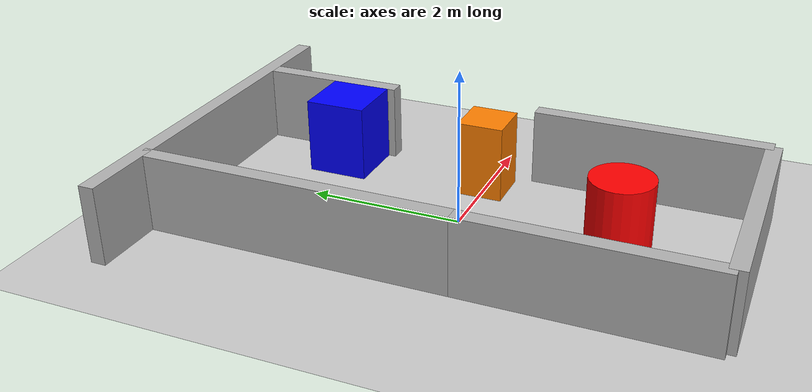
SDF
<?xml version="1.0"?>
<sdf version="1.6">
  <world name="default">
    <!-- Including standard models -->
    <include>
      <uri>model://ground_plane</uri>
    </include>
    <include>
      <uri>model://sun</uri>
    </include>

    <!-- Scene settings -->
    <scene>
      <shadows>false</shadows>
    </scene>

    <!-- GUI settings -->
    <gui fullscreen='0'>
      <camera name='user_camera'>
        <pose frame=''>0.319654 -0.235002 9.29441 0 1.5138 0.009599</pose>
        <view_controller>orbit</view_controller>
        <projection_type>perspective</projection_type>
      </camera>
    </gui>

    <!-- Physics settings -->
    <physics type="ode">
      <real_time_update_rate>1000.0</real_time_update_rate>
      <max_step_size>0.001</max_step_size>
      <real_time_factor>1</real_time_factor>
      <ode>
        <solver>
          <type>quick</type>
          <iters>150</iters>
          <precon_iters>0</precon_iters>
          <sor>1.400000</sor>
          <use_dynamic_moi_rescaling>1</use_dynamic_moi_rescaling>
        </solver>
        <constraints>
          <cfm>0.00001</cfm>
          <erp>0.2</erp>
          <contact_max_correcting_vel>2000.000000</contact_max_correcting_vel>
          <contact_surface_layer>0.01000</contact_surface_layer>
        </constraints>
      </ode>
    </physics>

    <!-- Maze walls -->

    <!-- Inner maze walls - More intricate pattern -->
    <!-- Horizontal walls - Modified to leave center area open -->
    <model name="maze_wall_h1">
      <static>true</static>
      <pose>0 3.5 0.5 0 0 0</pose>
      <link name="link">
        <collision name="collision">
          <geometry>
            <box>
              <size>5 0.2 1</size>
            </box>
          </geometry>
        </collision>
        <visual name="visual">
          <geometry>
            <box>
              <size>5 0.2 1</size>
            </box>
          </geometry>
          <material>
            <ambient>0.7 0.7 0.7 1</ambient>
            <diffuse>0.7 0.7 0.7 1</diffuse>
          </material>
        </visual>
      </link>
    </model>

    <model name="maze_wall_h11">
      <static>true</static>
      <pose>0 -3.5 0.5 0 0 0</pose>
      <link name="link">
        <collision name="collision">
          <geometry>
            <box>
              <size>3 0.2 1</size>
            </box>
          </geometry>
        </collision>
        <visual name="visual">
          <geometry>
            <box>
              <size>3 0.2 1</size>
            </box>
          </geometry>
          <material>
            <ambient>0.7 0.7 0.7 1</ambient>
            <diffuse>0.7 0.7 0.7 1</diffuse>
          </material>
        </visual>
      </link>
    </model>

    <!-- Vertical walls - Modified to leave center area open -->
    <model name="maze_wall_v1">
      <static>true</static>
      <pose>-1.5 1.5 0.5 0 0 1.5708</pose>
      <link name="link">
        <collision name="collision">
          <geometry>
            <box>
              <size>4 0.2 1</size>
            </box>
          </geometry>
          <lazer_retro>255</lazer_retro>
        </collision>
        <visual name="visual">
          <geometry>
            <box>
              <size>4 0.2 1</size>
            </box>
          </geometry>
          <material>
            <ambient>0.7 0.7 0.7 1</ambient>
            <diffuse>0.7 0.7 0.7 1</diffuse>
          </material>
        </visual>
      </link>
    </model>

    <model name="maze_wall_v3">
      <static>true</static>
      <pose>-1.5 -2 0.5 0 0 1.5708</pose>
      <link name="link">
        <collision name="collision">
          <geometry>
            <box>
              <size>3 0.2 1</size>
            </box>
          </geometry>
          <lazer_retro>255</lazer_retro>
        </collision>
        <visual name="visual">
          <geometry>
            <box>
              <size>3 0.2 1</size>
            </box>
          </geometry>
          <material>
            <ambient>0.7 0.7 0.7 1</ambient>
            <diffuse>0.7 0.7 0.7 1</diffuse>
          </material>
        </visual>
      </link>
    </model>

    <!-- Left an open area in the center -->
    <model name="maze_wall_v4">
      <static>true</static>
      <pose>1.5 2.5 0.5 0 0 1.5708</pose>
      <link name="link">
        <collision name="collision">
          <geometry>
            <box>
              <size>2 0.2 1</size>
            </box>
          </geometry>
          <lazer_retro>255</lazer_retro>
        </collision>
        <visual name="visual">
          <geometry>
            <box>
              <size>2 0.2 1</size>
            </box>
          </geometry>
          <material>
            <ambient>0.7 0.7 0.7 1</ambient>
            <diffuse>0.7 0.7 0.7 1</diffuse>
          </material>
        </visual>
      </link>
    </model>

    <model name="maze_wall_v6">
      <static>true</static>
      <pose>1.5 -2 0.5 0 0 1.5708</pose>
      <link name="link">
        <collision name="collision">
          <geometry>
            <box>
              <size>3 0.2 1</size>
            </box>
            <lazer_retro>255</lazer_retro>
          </geometry>
        </collision>
        <visual name="visual">
          <geometry>
            <box>
              <size>3 0.2 1</size>
            </box>
          </geometry>
          <material>
            <ambient>0.7 0.7 0.7 1</ambient>
            <diffuse>0.7 0.7 0.7 1</diffuse>
          </material>
        </visual>
      </link>
    </model>

    <!-- Static obstacles -->
    <model name="static_obstacle_1">
      <static>true</static>
      <pose>0 -2 0.5 0 0 0</pose>
      <link name="link">
        <collision name="collision">
          <geometry>
            <cylinder>
              <radius>0.4</radius>
              <length>1.0</length>
            </cylinder>
          </geometry>
          <lazer_retro>255</lazer_retro>
        </collision>
        <visual name="visual">
          <geometry>
            <cylinder>
              <radius>0.4</radius>
              <length>1.0</length>
            </cylinder>
          </geometry>
          <material>
            <ambient>1.0 0.0 0.0 1</ambient>
            <diffuse>1.0 0.0 0.0 1</diffuse>
          </material>
        </visual>
      </link>
    </model>

    <model name="static_obstacle_2">
      <static>true</static>
      <pose>1 2 0.5 0 0 0</pose>
      <link name="link">
        <collision name="collision">
          <geometry>
            <box>
              <size>0.8 0.8 1.0</size>
            </box>
          </geometry>
          <lazer_retro>255</lazer_retro>
        </collision>
        <visual name="visual">
          <geometry>
            <box>
              <size>0.8 0.8 1.0</size>
            </box>
          </geometry>
          <material>
            <ambient>0.0 0.0 1.0 1</ambient>
            <diffuse>0.0 0.0 1.0 1</diffuse>
          </material>
        </visual>
      </link>
    </model>

    <!-- Moving box obstacle with collision that respects walls -->
    <model name="moving_box">
      <pose>1 0 0.5 0 0 0</pose>
      <link name="link">
        <collision name="collision">
          <geometry>
            <box>
              <size>0.6 0.6 1.0</size>
            </box>
          </geometry>
          <surface>
            <contact>
              <ode>
                <min_depth>0.01</min_depth>
              </ode>
            </contact>
            <friction>
              <ode>
                <mu>0.5</mu>
                <mu2>0.5</mu2>
              </ode>
            </friction>
          </surface>
          <lazer_retro>255</lazer_retro>
        </collision>
        <visual name="visual">
          <geometry>
            <box>
              <size>0.6 0.6 1.0</size>
            </box>
          </geometry>
          <material>
            <ambient>1.0 0.5 0.0 1</ambient>
            <diffuse>1.0 0.5 0.0 1</diffuse>
          </material>
        </visual>
        <inertial>
          <mass>20.0</mass>
          <inertia>
            <ixx>1.0</ixx>
            <ixy>0</ixy>
            <ixz>0</ixz>
            <iyy>1.0</iyy>
            <iyz>0</iyz>
            <izz>1.0</izz>
          </inertia>
        </inertial>
      </link>

      <!-- Add a plugin to control the movement -->
      <plugin name="moving_obstacle" filename="libgazebo_ros_planar_move.so">
        <commandTopic>moving_box/cmd_vel</commandTopic>
        <odometryTopic>moving_box/odom</odometryTopic>
        <odometryFrame>odom</odometryFrame>
        <odometryRate>20.0</odometryRate>
        <robotBaseFrame>moving_box</robotBaseFrame>
      </plugin>
    </model>

    <!-- Add an automated controller for the box -->
    <plugin name="obstacle_controller" filename="libgazebo_ros_triggered_publisher.so">
      <trigger_topic>clock</trigger_topic>
      <trigger_magnitude>100</trigger_magnitude>
      <publish_topic>moving_box/cmd_vel</publish_topic>
      <publish_message_type>geometry_msgs/Twist</publish_message_type>
      <publish_message>
        <linear>
          <x>0.3</x>
          <y>0.0</y>
          <z>0.0</z>
        </linear>
        <angular>
          <x>0.0</x>
          <y>0.0</y>
          <z>0.2</z>
        </angular>
      </publish_message>
    </plugin>
  </world>
</sdf>
